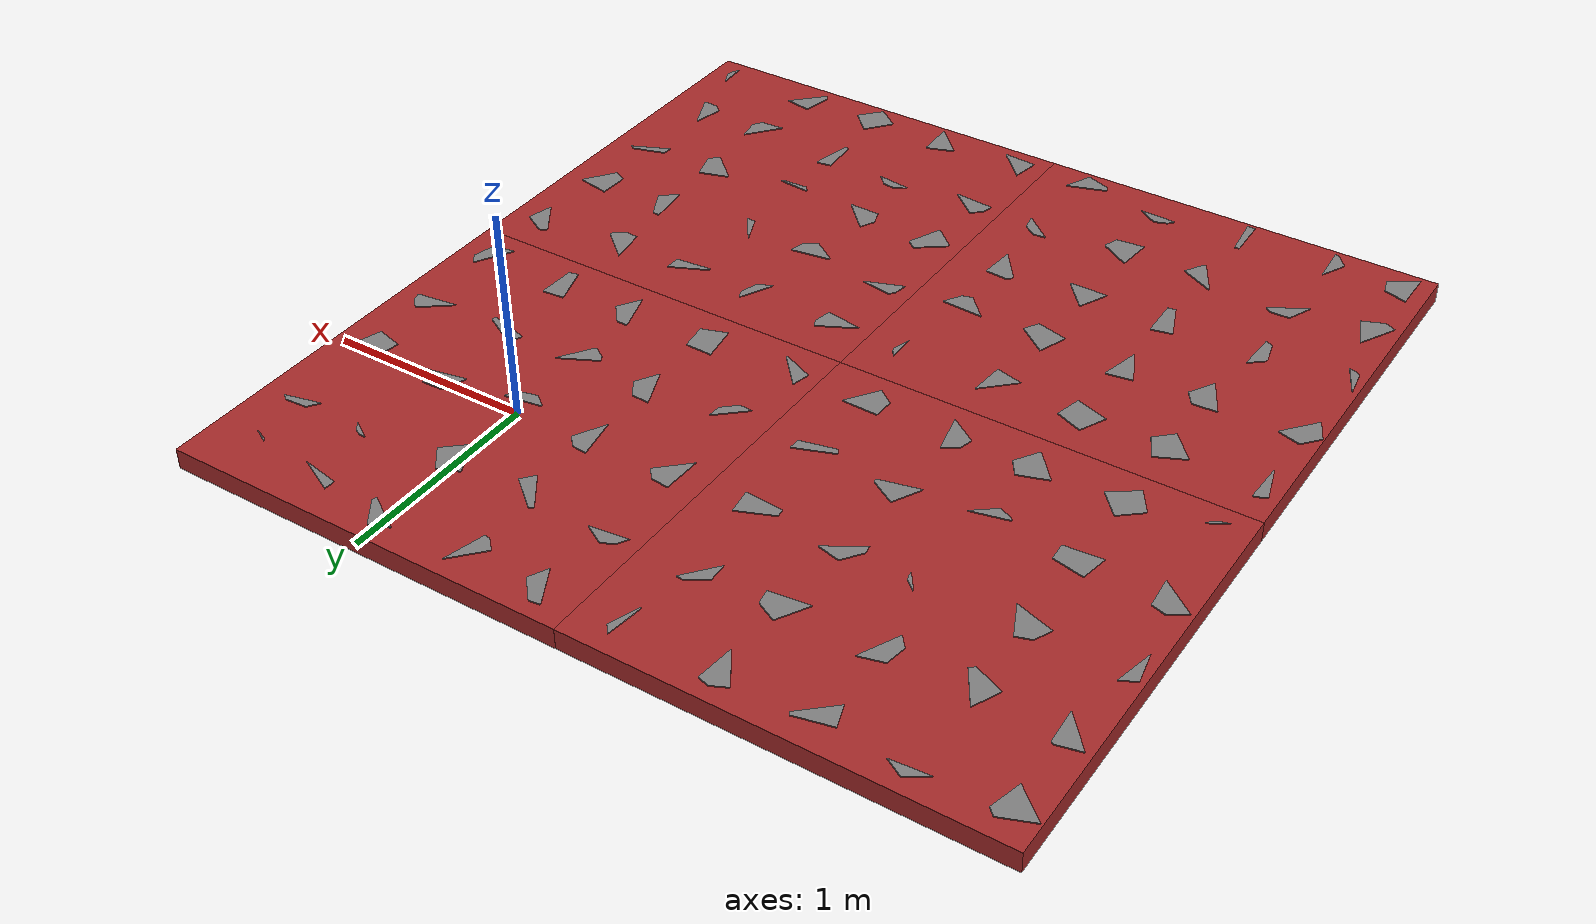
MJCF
<mujoco model="MuJoCo Model">
  <compiler angle="radian"/>

  <visual>
    <global elevation="-10" offwidth="2048" offheight="1536"/>
    <quality shadowsize="8192"/>
    <headlight diffuse="0.5 0.5 0.5" specular="1 1 1"/>
  </visual>

  <default>
    <mesh scale="0.1 0.1 0.1"/>
    <geom type="box"/>
  </default>

  <asset>
    <texture type="skybox" builtin="gradient" rgb1="0.5 0.5 0.5" rgb2="0 0 0" width="10" height="60"/>
    <texture type="2d" name="groundplane" builtin="checker" mark="edge" rgb1="1 1 1" rgb2="1 1 1" width="300" height="300"/>
    <material name="groundplane" texture="groundplane" texuniform="true" texrepeat="5 5" reflectance="0.3"/>
    <mesh name="d0_0_debris_-2_-2" vertex="-0.614793 0.788689 0 -0.0149217 0.999889 0 -0.106564 -0.994306 0 -0.122161 0.99251 0 -0.614793 0.788689 0.05 -0.0149217 0.999889 0.05 -0.106564 -0.994306 0.05 -0.122161 0.99251 0.05"/>
    <mesh name="d0_1_debris_-2_-2" vertex="-0.986749 0.162255 0 -0.297991 0.954569 0 0.763955 0.645269 0 -0.498748 -0.866747 0 -0.986749 0.162255 0.05 -0.297991 0.954569 0.05 0.763955 0.645269 0.05 -0.498748 -0.866747 0.05"/>
    <mesh name="d0_2_debris_-2_-2" vertex="-0.625657 -0.780098 0 -0.0851731 -0.996366 0 -0.396304 -0.918119 0 -0.822205 0.569191 0 -0.625657 -0.780098 0.05 -0.0851731 -0.996366 0.05 -0.396304 -0.918119 0.05 -0.822205 0.569191 0.05"/>
    <mesh name="d0_3_debris_-2_-2" vertex="-0.689954 -0.723853 0 0.822827 -0.568291 0 -0.20133 -0.979523 0 0.227664 0.97374 0 -0.689954 -0.723853 0.05 0.822827 -0.568291 0.05 -0.20133 -0.979523 0.05 0.227664 0.97374 0.05"/>
    <mesh name="d0_4_debris_-2_-2" vertex="-0.310926 0.950434 0 0.99012 -0.140219 0 -0.328539 -0.94449 0 0.780622 0.625003 0 -0.310926 0.950434 0.05 0.99012 -0.140219 0.05 -0.328539 -0.94449 0.05 0.780622 0.625003 0.05"/>
    <mesh name="d1_0_debris_-2_-2" vertex="0.406911 0.913468 0 0.165593 -0.986194 0 0.976677 -0.214713 0 -0.959713 0.280984 0 0.406911 0.913468 0.05 0.165593 -0.986194 0.05 0.976677 -0.214713 0.05 -0.959713 0.280984 0.05"/>
    <mesh name="d1_1_debris_-2_-2" vertex="0.538849 0.842402 0 0.285114 -0.958494 0 0.979251 0.202652 0 -0.624393 0.781111 0 0.538849 0.842402 0.05 0.285114 -0.958494 0.05 0.979251 0.202652 0.05 -0.624393 0.781111 0.05"/>
    <mesh name="d1_2_debris_-2_-2" vertex="-0.220918 0.975292 0 -0.314662 -0.949204 0 -0.667135 -0.744937 0 -0.930156 0.367165 0 -0.220918 0.975292 0.05 -0.314662 -0.949204 0.05 -0.667135 -0.744937 0.05 -0.930156 0.367165 0.05"/>
    <mesh name="d1_3_debris_-2_-2" vertex="-0.968788 -0.247889 0 0.72685 0.686796 0 -0.462879 0.886422 0 0.44052 0.897743 0 -0.968788 -0.247889 0.05 0.72685 0.686796 0.05 -0.462879 0.886422 0.05 0.44052 0.897743 0.05"/>
    <mesh name="d1_4_debris_-2_-2" vertex="-0.376933 0.926241 0 -0.965161 -0.261656 0 -0.250283 -0.968173 0 -0.44892 -0.893572 0 -0.376933 0.926241 0.05 -0.965161 -0.261656 0.05 -0.250283 -0.968173 0.05 -0.44892 -0.893572 0.05"/>
    <mesh name="d2_0_debris_-2_-2" vertex="0.590622 -0.806948 0 -0.951063 -0.308997 0 0.90472 0.426006 0 -0.357728 0.933826 0 0.590622 -0.806948 0.05 -0.951063 -0.308997 0.05 0.90472 0.426006 0.05 -0.357728 0.933826 0.05"/>
    <mesh name="d2_1_debris_-2_-2" vertex="0.0669399 -0.997757 0 0.47871 0.877973 0 -0.723283 0.690552 0 0.520434 0.853902 0 0.0669399 -0.997757 0.05 0.47871 0.877973 0.05 -0.723283 0.690552 0.05 0.520434 0.853902 0.05"/>
    <mesh name="d2_2_debris_-2_-2" vertex="0.00184604 -0.999998 0 0.372846 -0.927893 0 -0.6733 0.739369 0 0.321489 0.946913 0 0.00184604 -0.999998 0.05 0.372846 -0.927893 0.05 -0.6733 0.739369 0.05 0.321489 0.946913 0.05"/>
    <mesh name="d2_3_debris_-2_-2" vertex="0.356898 -0.934143 0 0.466196 -0.884682 0 0.999948 -0.010215 0 -0.600353 0.799735 0 0.356898 -0.934143 0.05 0.466196 -0.884682 0.05 0.999948 -0.010215 0.05 -0.600353 0.799735 0.05"/>
    <mesh name="d2_4_debris_-2_-2" vertex="0.104047 -0.994572 0 -0.116919 0.993142 0 -0.339089 0.940754 0 -0.281785 -0.959477 0 0.104047 -0.994572 0.05 -0.116919 0.993142 0.05 -0.339089 0.940754 0.05 -0.281785 -0.959477 0.05"/>
    <mesh name="d3_0_debris_-2_-2" vertex="0.479868 -0.877341 0 0.622437 0.78267 0 0.430595 -0.902545 0 -0.800745 -0.599005 0 0.479868 -0.877341 0.05 0.622437 0.78267 0.05 0.430595 -0.902545 0.05 -0.800745 -0.599005 0.05"/>
    <mesh name="d3_1_debris_-2_-2" vertex="-0.384695 0.923044 0 -0.901872 -0.432003 0 0.991649 -0.128965 0 0.587622 -0.809136 0 -0.384695 0.923044 0.05 -0.901872 -0.432003 0.05 0.991649 -0.128965 0.05 0.587622 -0.809136 0.05"/>
    <mesh name="d3_2_debris_-2_-2" vertex="-0.936384 -0.350978 0 -0.22308 0.9748 0 0.930379 -0.366599 0 -0.320812 0.947143 0 -0.936384 -0.350978 0.05 -0.22308 0.9748 0.05 0.930379 -0.366599 0.05 -0.320812 0.947143 0.05"/>
    <mesh name="d3_3_debris_-2_-2" vertex="-0.595416 -0.803418 0 -0.42726 0.904129 0 0.999191 0.0402178 0 0.741334 -0.671136 0 -0.595416 -0.803418 0.05 -0.42726 0.904129 0.05 0.999191 0.0402178 0.05 0.741334 -0.671136 0.05"/>
    <mesh name="d3_4_debris_-2_-2" vertex="-0.629773 0.776779 0 -0.0099671 0.99995 0 0.902339 0.431027 0 -0.862863 0.505438 0 -0.629773 0.776779 0.05 -0.0099671 0.99995 0.05 0.902339 0.431027 0.05 -0.862863 0.505438 0.05"/>
    <mesh name="d4_0_debris_-2_-2" vertex="0.942512 0.334173 0 0.72394 -0.689863 0 0.98829 0.152584 0 0.707035 0.707178 0 0.942512 0.334173 0.05 0.72394 -0.689863 0.05 0.98829 0.152584 0.05 0.707035 0.707178 0.05"/>
    <mesh name="d4_1_debris_-2_-2" vertex="0.998722 -0.0505327 0 0.0345225 -0.999404 0 0.494001 -0.869462 0 -0.998028 0.0627773 0 0.998722 -0.0505327 0.05 0.0345225 -0.999404 0.05 0.494001 -0.869462 0.05 -0.998028 0.0627773 0.05"/>
    <mesh name="d4_2_debris_-2_-2" vertex="0.419492 -0.907759 0 0.569734 0.821829 0 -0.753683 0.657238 0 -0.462144 0.886805 0 0.419492 -0.907759 0.05 0.569734 0.821829 0.05 -0.753683 0.657238 0.05 -0.462144 0.886805 0.05"/>
    <mesh name="d4_3_debris_-2_-2" vertex="-0.367084 0.930188 0 0.209124 0.977889 0 0.814089 0.580741 0 0.97836 -0.206908 0 -0.367084 0.930188 0.05 0.209124 0.977889 0.05 0.814089 0.580741 0.05 0.97836 -0.206908 0.05"/>
    <mesh name="d4_4_debris_-2_-2" vertex="-0.955938 -0.293569 0 0.333308 -0.942818 0 -0.857109 -0.515135 0 0.94001 0.341148 0 -0.955938 -0.293569 0.05 0.333308 -0.942818 0.05 -0.857109 -0.515135 0.05 0.94001 0.341148 0.05"/>
    <mesh name="d0_0_debris_-2_0" vertex="0.825678 0.564141 0 0.433442 -0.901182 0 -0.957368 0.288872 0 0.510276 0.860011 0 0.825678 0.564141 0.05 0.433442 -0.901182 0.05 -0.957368 0.288872 0.05 0.510276 0.860011 0.05"/>
    <mesh name="d0_1_debris_-2_0" vertex="0.57099 -0.820957 0 0.488268 0.872694 0 -0.731428 0.681919 0 0.36358 0.931563 0 0.57099 -0.820957 0.05 0.488268 0.872694 0.05 -0.731428 0.681919 0.05 0.36358 0.931563 0.05"/>
    <mesh name="d0_2_debris_-2_0" vertex="-0.107967 0.994155 0 -0.802894 0.596122 0 -0.768464 0.639894 0 -0.538151 -0.842849 0 -0.107967 0.994155 0.05 -0.802894 0.596122 0.05 -0.768464 0.639894 0.05 -0.538151 -0.842849 0.05"/>
    <mesh name="d0_3_debris_-2_0" vertex="0.703643 -0.710554 0 0.590939 0.806716 0 -0.0870416 0.996205 0 -0.865622 0.500698 0 0.703643 -0.710554 0.05 0.590939 0.806716 0.05 -0.0870416 0.996205 0.05 -0.865622 0.500698 0.05"/>
    <mesh name="d0_4_debris_-2_0" vertex="-0.000849732 -1 0 0.865276 -0.501296 0 0.517876 -0.855456 0 0.674426 -0.738342 0 -0.000849732 -1 0.05 0.865276 -0.501296 0.05 0.517876 -0.855456 0.05 0.674426 -0.738342 0.05"/>
    <mesh name="d1_0_debris_-2_0" vertex="-0.911127 0.412125 0 -0.0453477 0.998971 0 0.0327318 0.999464 0 0.837054 0.54712 0 -0.911127 0.412125 0.05 -0.0453477 0.998971 0.05 0.0327318 0.999464 0.05 0.837054 0.54712 0.05"/>
    <mesh name="d1_1_debris_-2_0" vertex="-0.9455 -0.325621 0 0.683465 -0.729983 0 0.431085 -0.902311 0 -0.367232 0.930129 0 -0.9455 -0.325621 0.05 0.683465 -0.729983 0.05 0.431085 -0.902311 0.05 -0.367232 0.930129 0.05"/>
    <mesh name="d1_2_debris_-2_0" vertex="-0.631815 0.775119 0 -0.999778 -0.021052 0 0.809461 -0.587173 0 0.0801581 0.996782 0 -0.631815 0.775119 0.05 -0.999778 -0.021052 0.05 0.809461 -0.587173 0.05 0.0801581 0.996782 0.05"/>
    <mesh name="d1_3_debris_-2_0" vertex="0.926003 -0.377516 0 0.878058 0.478554 0 -0.609538 0.792757 0 -0.85445 -0.519534 0 0.926003 -0.377516 0.05 0.878058 0.478554 0.05 -0.609538 0.792757 0.05 -0.85445 -0.519534 0.05"/>
    <mesh name="d1_4_debris_-2_0" vertex="-0.989631 0.143635 0 0.99659 -0.0825135 0 -0.258997 -0.965878 0 0.0216698 0.999765 0 -0.989631 0.143635 0.05 0.99659 -0.0825135 0.05 -0.258997 -0.965878 0.05 0.0216698 0.999765 0.05"/>
    <mesh name="d2_0_debris_-2_0" vertex="-0.600755 -0.799434 0 0.759753 0.650211 0 -0.966238 0.257652 0 0.84845 0.529275 0 -0.600755 -0.799434 0.05 0.759753 0.650211 0.05 -0.966238 0.257652 0.05 0.84845 0.529275 0.05"/>
    <mesh name="d2_1_debris_-2_0" vertex="-0.768761 0.639537 0 0.370883 0.928679 0 -0.492533 -0.870294 0 -0.932953 -0.359997 0 -0.768761 0.639537 0.05 0.370883 0.928679 0.05 -0.492533 -0.870294 0.05 -0.932953 -0.359997 0.05"/>
    <mesh name="d2_2_debris_-2_0" vertex="0.32365 0.946177 0 0.999979 0.00654966 0 0.885634 0.464383 0 0.930507 0.366275 0 0.32365 0.946177 0.05 0.999979 0.00654966 0.05 0.885634 0.464383 0.05 0.930507 0.366275 0.05"/>
    <mesh name="d2_3_debris_-2_0" vertex="0.979563 -0.201139 0 -0.665093 -0.746761 0 -0.79871 -0.601717 0 -0.0405943 -0.999176 0 0.979563 -0.201139 0.05 -0.665093 -0.746761 0.05 -0.79871 -0.601717 0.05 -0.0405943 -0.999176 0.05"/>
    <mesh name="d2_4_debris_-2_0" vertex="0.488668 0.87247 0 0.988986 0.148008 0 0.275168 -0.961396 0 -0.911212 0.411937 0 0.488668 0.87247 0.05 0.988986 0.148008 0.05 0.275168 -0.961396 0.05 -0.911212 0.411937 0.05"/>
    <mesh name="d3_0_debris_-2_0" vertex="-0.75645 0.654051 0 0.326466 -0.945209 0 -0.0416704 0.999131 0 0.50484 0.863213 0 -0.75645 0.654051 0.05 0.326466 -0.945209 0.05 -0.0416704 0.999131 0.05 0.50484 0.863213 0.05"/>
    <mesh name="d3_1_debris_-2_0" vertex="-0.90506 -0.425284 0 0.978808 -0.204782 0 0.859367 0.511359 0 -0.0952159 0.995457 0 -0.90506 -0.425284 0.05 0.978808 -0.204782 0.05 0.859367 0.511359 0.05 -0.0952159 0.995457 0.05"/>
    <mesh name="d3_2_debris_-2_0" vertex="-0.99969 0.0248799 0 -0.925021 -0.379917 0 0.738141 0.674646 0 -0.346519 0.938043 0 -0.99969 0.0248799 0.05 -0.925021 -0.379917 0.05 0.738141 0.674646 0.05 -0.346519 0.938043 0.05"/>
    <mesh name="d3_3_debris_-2_0" vertex="-0.241987 0.97028 0 -0.9318 -0.362973 0 0.964294 0.264834 0 0.996842 0.07941 0 -0.241987 0.97028 0.05 -0.9318 -0.362973 0.05 0.964294 0.264834 0.05 0.996842 0.07941 0.05"/>
    <mesh name="d3_4_debris_-2_0" vertex="-0.839628 0.543162 0 -0.149974 0.98869 0 -0.997292 -0.0735498 0 0.289133 -0.957289 0 -0.839628 0.543162 0.05 -0.149974 0.98869 0.05 -0.997292 -0.0735498 0.05 0.289133 -0.957289 0.05"/>
    <mesh name="d4_0_debris_-2_0" vertex="0.340881 -0.940107 0 0.401754 -0.915748 0 0.89307 0.449917 0 0.565652 0.824644 0 0.340881 -0.940107 0.05 0.401754 -0.915748 0.05 0.89307 0.449917 0.05 0.565652 0.824644 0.05"/>
    <mesh name="d4_1_debris_-2_0" vertex="-0.0526115 0.998615 0 -0.923667 0.383197 0 0.306626 0.95183 0 -0.877081 -0.480343 0 -0.0526115 0.998615 0.05 -0.923667 0.383197 0.05 0.306626 0.95183 0.05 -0.877081 -0.480343 0.05"/>
    <mesh name="d4_2_debris_-2_0" vertex="-0.936023 -0.351939 0 0.875874 -0.48254 0 0.696618 0.717442 0 -0.999601 0.0282567 0 -0.936023 -0.351939 0.05 0.875874 -0.48254 0.05 0.696618 0.717442 0.05 -0.999601 0.0282567 0.05"/>
    <mesh name="d4_3_debris_-2_0" vertex="0.948881 -0.315633 0 -0.89117 -0.45367 0 0.972995 0.230828 0 -0.721418 -0.6925 0 0.948881 -0.315633 0.05 -0.89117 -0.45367 0.05 0.972995 0.230828 0.05 -0.721418 -0.6925 0.05"/>
    <mesh name="d4_4_debris_-2_0" vertex="-0.131102 -0.991369 0 -0.853395 0.521265 0 -0.894085 -0.447898 0 0.884365 0.466797 0 -0.131102 -0.991369 0.05 -0.853395 0.521265 0.05 -0.894085 -0.447898 0.05 0.884365 0.466797 0.05"/>
    <mesh name="d0_0_debris_0_-2" vertex="0.963298 0.268433 0 0.795475 -0.605987 0 0.806848 0.590759 0 -0.954069 -0.299587 0 0.963298 0.268433 0.05 0.795475 -0.605987 0.05 0.806848 0.590759 0.05 -0.954069 -0.299587 0.05"/>
    <mesh name="d0_1_debris_0_-2" vertex="-0.989791 -0.142529 0 -0.65459 0.755984 0 0.848773 0.528758 0 -0.870596 0.491999 0 -0.989791 -0.142529 0.05 -0.65459 0.755984 0.05 0.848773 0.528758 0.05 -0.870596 0.491999 0.05"/>
    <mesh name="d0_2_debris_0_-2" vertex="0.780537 0.62511 0 0.338984 0.940792 0 -0.998169 -0.0604795 0 0.06138 -0.998114 0 0.780537 0.62511 0.05 0.338984 0.940792 0.05 -0.998169 -0.0604795 0.05 0.06138 -0.998114 0.05"/>
    <mesh name="d0_3_debris_0_-2" vertex="0.98387 -0.178884 0 -0.830223 0.557432 0 -0.999992 0.00389527 0 -0.335743 0.941953 0 0.98387 -0.178884 0.05 -0.830223 0.557432 0.05 -0.999992 0.00389527 0.05 -0.335743 0.941953 0.05"/>
    <mesh name="d0_4_debris_0_-2" vertex="0.757662 -0.652647 0 -0.607302 0.794471 0 0.778932 -0.627108 0 -0.848578 -0.52907 0 0.757662 -0.652647 0.05 -0.607302 0.794471 0.05 0.778932 -0.627108 0.05 -0.848578 -0.52907 0.05"/>
    <mesh name="d1_0_debris_0_-2" vertex="0.989617 0.143732 0 0.703651 -0.710546 0 0.825715 0.564087 0 0.0155992 -0.999878 0 0.989617 0.143732 0.05 0.703651 -0.710546 0.05 0.825715 0.564087 0.05 0.0155992 -0.999878 0.05"/>
    <mesh name="d1_1_debris_0_-2" vertex="0.191219 -0.981547 0 -0.983507 -0.180872 0 0.992352 0.123442 0 0.815301 -0.579037 0 0.191219 -0.981547 0.05 -0.983507 -0.180872 0.05 0.992352 0.123442 0.05 0.815301 -0.579037 0.05"/>
    <mesh name="d1_2_debris_0_-2" vertex="0.757831 -0.652451 0 -0.998219 0.0596626 0 -0.786674 -0.617368 0 -0.645085 0.76411 0 0.757831 -0.652451 0.05 -0.998219 0.0596626 0.05 -0.786674 -0.617368 0.05 -0.645085 0.76411 0.05"/>
    <mesh name="d1_3_debris_0_-2" vertex="0.418509 0.908213 0 -0.183862 0.982952 0 0.909917 0.41479 0 -0.757932 0.652333 0 0.418509 0.908213 0.05 -0.183862 0.982952 0.05 0.909917 0.41479 0.05 -0.757932 0.652333 0.05"/>
    <mesh name="d1_4_debris_0_-2" vertex="-0.893786 0.448494 0 0.43763 -0.899155 0 0.434538 0.900654 0 0.489825 -0.871821 0 -0.893786 0.448494 0.05 0.43763 -0.899155 0.05 0.434538 0.900654 0.05 0.489825 -0.871821 0.05"/>
    <mesh name="d2_0_debris_0_-2" vertex="0.954164 0.299284 0 -0.857642 -0.514247 0 0.90625 -0.422741 0 -0.812871 -0.582444 0 0.954164 0.299284 0.05 -0.857642 -0.514247 0.05 0.90625 -0.422741 0.05 -0.812871 -0.582444 0.05"/>
    <mesh name="d2_1_debris_0_-2" vertex="0.122448 -0.992475 0 0.186412 -0.982472 0 -0.245006 -0.969522 0 -0.86641 0.499334 0 0.122448 -0.992475 0.05 0.186412 -0.982472 0.05 -0.245006 -0.969522 0.05 -0.86641 0.499334 0.05"/>
    <mesh name="d2_2_debris_0_-2" vertex="0.745101 -0.666952 0 -0.587373 -0.809316 0 -0.843606 -0.536962 0 0.672869 -0.739762 0 0.745101 -0.666952 0.05 -0.587373 -0.809316 0.05 -0.843606 -0.536962 0.05 0.672869 -0.739762 0.05"/>
    <mesh name="d2_3_debris_0_-2" vertex="-0.402569 -0.91539 0 -0.50823 0.861221 0 0.236807 0.971557 0 -0.189084 -0.981961 0 -0.402569 -0.91539 0.05 -0.50823 0.861221 0.05 0.236807 0.971557 0.05 -0.189084 -0.981961 0.05"/>
    <mesh name="d2_4_debris_0_-2" vertex="-0.979684 -0.200549 0 0.999812 0.0194142 0 0.0789454 -0.996879 0 -0.00350131 0.999994 0 -0.979684 -0.200549 0.05 0.999812 0.0194142 0.05 0.0789454 -0.996879 0.05 -0.00350131 0.999994 0.05"/>
    <mesh name="d3_0_debris_0_-2" vertex="-0.392587 -0.919715 0 0.215744 -0.97645 0 -0.635228 0.772325 0 0.863584 -0.504205 0 -0.392587 -0.919715 0.05 0.215744 -0.97645 0.05 -0.635228 0.772325 0.05 0.863584 -0.504205 0.05"/>
    <mesh name="d3_1_debris_0_-2" vertex="0.122755 -0.992437 0 0.239577 0.970877 0 0.925524 -0.378688 0 -0.121251 0.992622 0 0.122755 -0.992437 0.05 0.239577 0.970877 0.05 0.925524 -0.378688 0.05 -0.121251 0.992622 0.05"/>
    <mesh name="d3_2_debris_0_-2" vertex="-0.91674 0.399483 0 0.525513 0.850786 0 0.487515 -0.873114 0 0.901896 -0.431953 0 -0.91674 0.399483 0.05 0.525513 0.850786 0.05 0.487515 -0.873114 0.05 0.901896 -0.431953 0.05"/>
    <mesh name="d3_3_debris_0_-2" vertex="0.745292 0.666738 0 -0.509866 -0.860254 0 0.933296 -0.359109 0 0.628706 -0.777644 0 0.745292 0.666738 0.05 -0.509866 -0.860254 0.05 0.933296 -0.359109 0.05 0.628706 -0.777644 0.05"/>
    <mesh name="d3_4_debris_0_-2" vertex="0.766424 0.642335 0 -0.819146 -0.573586 0 -0.51009 0.860121 0 -0.64204 -0.766671 0 0.766424 0.642335 0.05 -0.819146 -0.573586 0.05 -0.51009 0.860121 0.05 -0.64204 -0.766671 0.05"/>
    <mesh name="d4_0_debris_0_-2" vertex="-0.135148 0.990825 0 0.918145 0.396245 0 -0.53147 0.847077 0 0.585832 -0.810432 0 -0.135148 0.990825 0.05 0.918145 0.396245 0.05 -0.53147 0.847077 0.05 0.585832 -0.810432 0.05"/>
    <mesh name="d4_1_debris_0_-2" vertex="-0.734691 -0.678402 0 -0.686914 0.726739 0 0.903262 0.429088 0 -0.150036 -0.988681 0 -0.734691 -0.678402 0.05 -0.686914 0.726739 0.05 0.903262 0.429088 0.05 -0.150036 -0.988681 0.05"/>
    <mesh name="d4_2_debris_0_-2" vertex="-0.980402 -0.197007 0 0.670224 0.742159 0 -0.96837 0.249518 0 0.801806 0.597585 0 -0.980402 -0.197007 0.05 0.670224 0.742159 0.05 -0.96837 0.249518 0.05 0.801806 0.597585 0.05"/>
    <mesh name="d4_3_debris_0_-2" vertex="-0.488341 0.872653 0 0.304408 -0.952542 0 -0.823132 -0.56785 0 -0.43718 -0.899374 0 -0.488341 0.872653 0.05 0.304408 -0.952542 0.05 -0.823132 -0.56785 0.05 -0.43718 -0.899374 0.05"/>
    <mesh name="d4_4_debris_0_-2" vertex="0.998279 0.0586476 0 0.975867 -0.218365 0 0.741628 -0.670812 0 0.664606 0.747194 0 0.998279 0.0586476 0.05 0.975867 -0.218365 0.05 0.741628 -0.670812 0.05 0.664606 0.747194 0.05"/>
    <mesh name="d0_0_debris_0_0" vertex="0.99851 0.0545622 0 -0.395796 0.918338 0 0.149617 0.988744 0 0.556778 -0.830661 0 0.99851 0.0545622 0.05 -0.395796 0.918338 0.05 0.149617 0.988744 0.05 0.556778 -0.830661 0.05"/>
    <mesh name="d0_1_debris_0_0" vertex="-0.641 0.767541 0 -0.971249 0.238066 0 -0.0789145 0.996881 0 0.888054 0.459739 0 -0.641 0.767541 0.05 -0.971249 0.238066 0.05 -0.0789145 0.996881 0.05 0.888054 0.459739 0.05"/>
    <mesh name="d0_2_debris_0_0" vertex="0.932179 0.361997 0 0.541133 0.840937 0 -0.336459 0.941698 0 -0.400644 -0.916234 0 0.932179 0.361997 0.05 0.541133 0.840937 0.05 -0.336459 0.941698 0.05 -0.400644 -0.916234 0.05"/>
    <mesh name="d0_3_debris_0_0" vertex="0.275664 -0.961254 0 -0.355416 -0.934708 0 0.967393 0.253281 0 0.922133 -0.386874 0 0.275664 -0.961254 0.05 -0.355416 -0.934708 0.05 0.967393 0.253281 0.05 0.922133 -0.386874 0.05"/>
    <mesh name="d0_4_debris_0_0" vertex="-0.973027 -0.23069 0 0.562048 -0.827104 0 -0.769176 0.639037 0 0.487578 -0.873079 0 -0.973027 -0.23069 0.05 0.562048 -0.827104 0.05 -0.769176 0.639037 0.05 0.487578 -0.873079 0.05"/>
    <mesh name="d1_0_debris_0_0" vertex="-0.430062 -0.902799 0 -0.905097 -0.425205 0 -0.145722 -0.989326 0 0.341012 0.940059 0 -0.430062 -0.902799 0.05 -0.905097 -0.425205 0.05 -0.145722 -0.989326 0.05 0.341012 0.940059 0.05"/>
    <mesh name="d1_1_debris_0_0" vertex="-0.495542 0.868584 0 0.957213 -0.289385 0 0.466175 -0.884692 0 -0.681404 0.731907 0 -0.495542 0.868584 0.05 0.957213 -0.289385 0.05 0.466175 -0.884692 0.05 -0.681404 0.731907 0.05"/>
    <mesh name="d1_2_debris_0_0" vertex="-0.268267 0.963345 0 0.432433 0.901666 0 0.89476 0.446547 0 0.09511 -0.995467 0 -0.268267 0.963345 0.05 0.432433 0.901666 0.05 0.89476 0.446547 0.05 0.09511 -0.995467 0.05"/>
    <mesh name="d1_3_debris_0_0" vertex="-0.388929 0.921268 0 0.361892 -0.93222 0 0.993091 0.117349 0 0.471757 0.881729 0 -0.388929 0.921268 0.05 0.361892 -0.93222 0.05 0.993091 0.117349 0.05 0.471757 0.881729 0.05"/>
    <mesh name="d1_4_debris_0_0" vertex="-0.365224 -0.93092 0 0.671492 0.741012 0 0.845573 -0.533859 0 -0.631225 0.7756 0 -0.365224 -0.93092 0.05 0.671492 0.741012 0.05 0.845573 -0.533859 0.05 -0.631225 0.7756 0.05"/>
    <mesh name="d2_0_debris_0_0" vertex="0.128361 0.991727 0 0.978844 -0.20461 0 -0.780016 0.62576 0 0.909802 -0.415043 0 0.128361 0.991727 0.05 0.978844 -0.20461 0.05 -0.780016 0.62576 0.05 0.909802 -0.415043 0.05"/>
    <mesh name="d2_1_debris_0_0" vertex="-0.0559668 -0.998433 0 0.175203 0.984532 0 -0.822664 0.568528 0 0.997921 -0.0644436 0 -0.0559668 -0.998433 0.05 0.175203 0.984532 0.05 -0.822664 0.568528 0.05 0.997921 -0.0644436 0.05"/>
    <mesh name="d2_2_debris_0_0" vertex="0.975243 -0.221137 0 -0.23298 -0.972481 0 0.651397 -0.758737 0 -0.863305 -0.504682 0 0.975243 -0.221137 0.05 -0.23298 -0.972481 0.05 0.651397 -0.758737 0.05 -0.863305 -0.504682 0.05"/>
    <mesh name="d2_3_debris_0_0" vertex="-0.940102 -0.340893 0 -0.804841 -0.59349 0 0.840908 0.541179 0 -0.21215 -0.977237 0 -0.940102 -0.340893 0.05 -0.804841 -0.59349 0.05 0.840908 0.541179 0.05 -0.21215 -0.977237 0.05"/>
    <mesh name="d2_4_debris_0_0" vertex="0.26786 0.963458 0 0.994792 0.10193 0 0.30688 -0.951748 0 -0.283118 0.959085 0 0.26786 0.963458 0.05 0.994792 0.10193 0.05 0.30688 -0.951748 0.05 -0.283118 0.959085 0.05"/>
    <mesh name="d3_0_debris_0_0" vertex="-0.999406 -0.0344702 0 -0.96176 0.273892 0 -0.969603 -0.244685 0 0.816334 -0.577581 0 -0.999406 -0.0344702 0.05 -0.96176 0.273892 0.05 -0.969603 -0.244685 0.05 0.816334 -0.577581 0.05"/>
    <mesh name="d3_1_debris_0_0" vertex="-0.0981758 0.995169 0 0.922622 0.385706 0 0.507841 0.861451 0 0.243502 0.9699 0 -0.0981758 0.995169 0.05 0.922622 0.385706 0.05 0.507841 0.861451 0.05 0.243502 0.9699 0.05"/>
    <mesh name="d3_2_debris_0_0" vertex="0.994021 0.109193 0 -0.965005 -0.262232 0 -0.542057 0.840342 0 0.467681 0.883897 0 0.994021 0.109193 0.05 -0.965005 -0.262232 0.05 -0.542057 0.840342 0.05 0.467681 0.883897 0.05"/>
    <mesh name="d3_3_debris_0_0" vertex="0.977383 -0.211479 0 -0.699504 0.714628 0 0.906874 -0.421402 0 -0.995104 0.098829 0 0.977383 -0.211479 0.05 -0.699504 0.714628 0.05 0.906874 -0.421402 0.05 -0.995104 0.098829 0.05"/>
    <mesh name="d3_4_debris_0_0" vertex="-0.0498246 -0.998758 0 -0.608128 0.793839 0 0.399435 -0.916762 0 0.477989 0.878366 0 -0.0498246 -0.998758 0.05 -0.608128 0.793839 0.05 0.399435 -0.916762 0.05 0.477989 0.878366 0.05"/>
    <mesh name="d4_0_debris_0_0" vertex="-0.792806 -0.609474 0 -0.0384015 -0.999262 0 -0.0287689 -0.999586 0 -0.656033 -0.754732 0 -0.792806 -0.609474 0.05 -0.0384015 -0.999262 0.05 -0.0287689 -0.999586 0.05 -0.656033 -0.754732 0.05"/>
    <mesh name="d4_1_debris_0_0" vertex="0.741113 0.67138 0 -0.95977 0.280788 0 -0.604903 0.796299 0 0.499171 0.866504 0 0.741113 0.67138 0.05 -0.95977 0.280788 0.05 -0.604903 0.796299 0.05 0.499171 0.866504 0.05"/>
    <mesh name="d4_2_debris_0_0" vertex="-0.611077 0.791571 0 0.886895 0.461971 0 0.423112 -0.906077 0 -0.822053 -0.56941 0 -0.611077 0.791571 0.05 0.886895 0.461971 0.05 0.423112 -0.906077 0.05 -0.822053 -0.56941 0.05"/>
    <mesh name="d4_3_debris_0_0" vertex="-0.979871 -0.199633 0 0.453413 0.8913 0 0.850005 0.526774 0 0.998359 0.0572617 0 -0.979871 -0.199633 0.05 0.453413 0.8913 0.05 0.850005 0.526774 0.05 0.998359 0.0572617 0.05"/>
    <mesh name="d4_4_debris_0_0" vertex="0.676226 -0.736695 0 0.629824 0.776738 0 0.950444 0.310896 0 -0.372898 -0.927872 0 0.676226 -0.736695 0.05 0.629824 0.776738 0.05 0.950444 0.310896 0.05 -0.372898 -0.927872 0.05"/>
  </asset>

  <worldbody>
    <light pos="-1 -1 40" dir="0.0663723 0.0663723 -0.995585"/>
    <light pos="-1 1 40" dir="0.0663723 -0.0663723 -0.995585"/>
    <light pos="1 -1 40" dir="-0.0663723 0.0663723 -0.995585"/>
    <light pos="1 1 40" dir="-0.0663723 -0.0663723 -0.995585"/>
    <body name="debris_-2_-2" pos="-2 -2 0">
      <geom size="1 1 0.05" rgba="0.647 0.165 0.165 1"/>
    </body>
    <body name="d0_0_debris_-2_-2" pos="-2.95 -1.05 0.2">
      <joint type="free" limited="false" actuatorfrclimited="false"/>
      <geom type="mesh" solref="0.9" solimp="0.9 0.95 0.001 0 0" mesh="d0_0_debris_-2_-2"/>
    </body>
    <body name="d0_1_debris_-2_-2" pos="-2.95 -1.45 0.2">
      <joint type="free" limited="false" actuatorfrclimited="false"/>
      <geom type="mesh" solref="0.9" solimp="0.9 0.95 0.001 0 0" mesh="d0_1_debris_-2_-2"/>
    </body>
    <body name="d0_2_debris_-2_-2" pos="-2.95 -1.85 0.2">
      <joint type="free" limited="false" actuatorfrclimited="false"/>
      <geom type="mesh" solref="0.9" solimp="0.9 0.95 0.001 0 0" mesh="d0_2_debris_-2_-2"/>
    </body>
    <body name="d0_3_debris_-2_-2" pos="-2.95 -2.25 0.2">
      <joint type="free" limited="false" actuatorfrclimited="false"/>
      <geom type="mesh" solref="0.9" solimp="0.9 0.95 0.001 0 0" mesh="d0_3_debris_-2_-2"/>
    </body>
    <body name="d0_4_debris_-2_-2" pos="-2.95 -2.65 0.2">
      <joint type="free" limited="false" actuatorfrclimited="false"/>
      <geom type="mesh" solref="0.9" solimp="0.9 0.95 0.001 0 0" mesh="d0_4_debris_-2_-2"/>
    </body>
    <body name="d1_0_debris_-2_-2" pos="-2.55 -1.05 0.2">
      <joint type="free" limited="false" actuatorfrclimited="false"/>
      <geom type="mesh" solref="0.9" solimp="0.9 0.95 0.001 0 0" mesh="d1_0_debris_-2_-2"/>
    </body>
    <body name="d1_1_debris_-2_-2" pos="-2.55 -1.45 0.2">
      <joint type="free" limited="false" actuatorfrclimited="false"/>
      <geom type="mesh" solref="0.9" solimp="0.9 0.95 0.001 0 0" mesh="d1_1_debris_-2_-2"/>
    </body>
    <body name="d1_2_debris_-2_-2" pos="-2.55 -1.85 0.2">
      <joint type="free" limited="false" actuatorfrclimited="false"/>
      <geom type="mesh" solref="0.9" solimp="0.9 0.95 0.001 0 0" mesh="d1_2_debris_-2_-2"/>
    </body>
    <body name="d1_3_debris_-2_-2" pos="-2.55 -2.25 0.2">
      <joint type="free" limited="false" actuatorfrclimited="false"/>
      <geom type="mesh" solref="0.9" solimp="0.9 0.95 0.001 0 0" mesh="d1_3_debris_-2_-2"/>
    </body>
    <body name="d1_4_debris_-2_-2" pos="-2.55 -2.65 0.2">
      <joint type="free" limited="false" actuatorfrclimited="false"/>
      <geom type="mesh" solref="0.9" solimp="0.9 0.95 0.001 0 0" mesh="d1_4_debris_-2_-2"/>
    </body>
    <body name="d2_0_debris_-2_-2" pos="-2.15 -1.05 0.2">
      <joint type="free" limited="false" actuatorfrclimited="false"/>
      <geom type="mesh" solref="0.9" solimp="0.9 0.95 0.001 0 0" mesh="d2_0_debris_-2_-2"/>
    </body>
    <body name="d2_1_debris_-2_-2" pos="-2.15 -1.45 0.2">
      <joint type="free" limited="false" actuatorfrclimited="false"/>
      <geom type="mesh" solref="0.9" solimp="0.9 0.95 0.001 0 0" mesh="d2_1_debris_-2_-2"/>
    </body>
    <body name="d2_2_debris_-2_-2" pos="-2.15 -1.85 0.2">
      <joint type="free" limited="false" actuatorfrclimited="false"/>
      <geom type="mesh" solref="0.9" solimp="0.9 0.95 0.001 0 0" mesh="d2_2_debris_-2_-2"/>
    </body>
    <body name="d2_3_debris_-2_-2" pos="-2.15 -2.25 0.2">
      <joint type="free" limited="false" actuatorfrclimited="false"/>
      <geom type="mesh" solref="0.9" solimp="0.9 0.95 0.001 0 0" mesh="d2_3_debris_-2_-2"/>
    </body>
    <body name="d2_4_debris_-2_-2" pos="-2.15 -2.65 0.2">
      <joint type="free" limited="false" actuatorfrclimited="false"/>
      <geom type="mesh" solref="0.9" solimp="0.9 0.95 0.001 0 0" mesh="d2_4_debris_-2_-2"/>
    </body>
    <body name="d3_0_debris_-2_-2" pos="-1.75 -1.05 0.2">
      <joint type="free" limited="false" actuatorfrclimited="false"/>
      <geom type="mesh" solref="0.9" solimp="0.9 0.95 0.001 0 0" mesh="d3_0_debris_-2_-2"/>
    </body>
    <body name="d3_1_debris_-2_-2" pos="-1.75 -1.45 0.2">
      <joint type="free" limited="false" actuatorfrclimited="false"/>
      <geom type="mesh" solref="0.9" solimp="0.9 0.95 0.001 0 0" mesh="d3_1_debris_-2_-2"/>
    </body>
    <body name="d3_2_debris_-2_-2" pos="-1.75 -1.85 0.2">
      <joint type="free" limited="false" actuatorfrclimited="false"/>
      <geom type="mesh" solref="0.9" solimp="0.9 0.95 0.001 0 0" mesh="d3_2_debris_-2_-2"/>
    </body>
    <body name="d3_3_debris_-2_-2" pos="-1.75 -2.25 0.2">
      <joint type="free" limited="false" actuatorfrclimited="false"/>
      <geom type="mesh" solref="0.9" solimp="0.9 0.95 0.001 0 0" mesh="d3_3_debris_-2_-2"/>
    </body>
    <body name="d3_4_debris_-2_-2" pos="-1.75 -2.65 0.2">
      <joint type="free" limited="false" actuatorfrclimited="false"/>
      <geom type="mesh" solref="0.9" solimp="0.9 0.95 0.001 0 0" mesh="d3_4_debris_-2_-2"/>
    </body>
    <body name="d4_0_debris_-2_-2" pos="-1.35 -1.05 0.2">
      <joint type="free" limited="false" actuatorfrclimited="false"/>
      <geom type="mesh" solref="0.9" solimp="0.9 0.95 0.001 0 0" mesh="d4_0_debris_-2_-2"/>
    </body>
    <body name="d4_1_debris_-2_-2" pos="-1.35 -1.45 0.2">
      <joint type="free" limited="false" actuatorfrclimited="false"/>
      <geom type="mesh" solref="0.9" solimp="0.9 0.95 0.001 0 0" mesh="d4_1_debris_-2_-2"/>
    </body>
    <body name="d4_2_debris_-2_-2" pos="-1.35 -1.85 0.2">
      <joint type="free" limited="false" actuatorfrclimited="false"/>
      <geom type="mesh" solref="0.9" solimp="0.9 0.95 0.001 0 0" mesh="d4_2_debris_-2_-2"/>
    </body>
    <body name="d4_3_debris_-2_-2" pos="-1.35 -2.25 0.2">
      <joint type="free" limited="false" actuatorfrclimited="false"/>
      <geom type="mesh" solref="0.9" solimp="0.9 0.95 0.001 0 0" mesh="d4_3_debris_-2_-2"/>
    </body>
    <body name="d4_4_debris_-2_-2" pos="-1.35 -2.65 0.2">
      <joint type="free" limited="false" actuatorfrclimited="false"/>
      <geom type="mesh" solref="0.9" solimp="0.9 0.95 0.001 0 0" mesh="d4_4_debris_-2_-2"/>
    </body>
    <body name="debris_-2_0" pos="-2 0 0">
      <geom size="1 1 0.05" rgba="0.647 0.165 0.165 1"/>
    </body>
    <body name="d0_0_debris_-2_0" pos="-2.95 0.95 0.2">
      <joint type="free" limited="false" actuatorfrclimited="false"/>
      <geom type="mesh" solref="0.9" solimp="0.9 0.95 0.001 0 0" mesh="d0_0_debris_-2_0"/>
    </body>
    <body name="d0_1_debris_-2_0" pos="-2.95 0.55 0.2">
      <joint type="free" limited="false" actuatorfrclimited="false"/>
      <geom type="mesh" solref="0.9" solimp="0.9 0.95 0.001 0 0" mesh="d0_1_debris_-2_0"/>
    </body>
    <body name="d0_2_debris_-2_0" pos="-2.95 0.15 0.2">
      <joint type="free" limited="false" actuatorfrclimited="false"/>
      <geom type="mesh" solref="0.9" solimp="0.9 0.95 0.001 0 0" mesh="d0_2_debris_-2_0"/>
    </body>
    <body name="d0_3_debris_-2_0" pos="-2.95 -0.25 0.2">
      <joint type="free" limited="false" actuatorfrclimited="false"/>
      <geom type="mesh" solref="0.9" solimp="0.9 0.95 0.001 0 0" mesh="d0_3_debris_-2_0"/>
    </body>
    <body name="d0_4_debris_-2_0" pos="-2.95 -0.65 0.2">
      <joint type="free" limited="false" actuatorfrclimited="false"/>
      <geom type="mesh" solref="0.9" solimp="0.9 0.95 0.001 0 0" mesh="d0_4_debris_-2_0"/>
    </body>
    <body name="d1_0_debris_-2_0" pos="-2.55 0.95 0.2">
      <joint type="free" limited="false" actuatorfrclimited="false"/>
      <geom type="mesh" solref="0.9" solimp="0.9 0.95 0.001 0 0" mesh="d1_0_debris_-2_0"/>
    </body>
    <body name="d1_1_debris_-2_0" pos="-2.55 0.55 0.2">
      <joint type="free" limited="false" actuatorfrclimited="false"/>
      <geom type="mesh" solref="0.9" solimp="0.9 0.95 0.001 0 0" mesh="d1_1_debris_-2_0"/>
    </body>
    <body name="d1_2_debris_-2_0" pos="-2.55 0.15 0.2">
      <joint type="free" limited="false" actuatorfrclimited="false"/>
      <geom type="mesh" solref="0.9" solimp="0.9 0.95 0.001 0 0" mesh="d1_2_debris_-2_0"/>
    </body>
    <body name="d1_3_debris_-2_0" pos="-2.55 -0.25 0.2">
      <joint type="free" limited="false" actuatorfrclimited="false"/>
      <geom type="mesh" solref="0.9" solimp="0.9 0.95 0.001 0 0" mesh="d1_3_debris_-2_0"/>
    </body>
    <body name="d1_4_debris_-2_0" pos="-2.55 -0.65 0.2">
      <joint type="free" limited="false" actuatorfrclimited="false"/>
      <geom type="mesh" solref="0.9" solimp="0.9 0.95 0.001 0 0" mesh="d1_4_debris_-2_0"/>
    </body>
    <body name="d2_0_debris_-2_0" pos="-2.15 0.95 0.2">
      <joint type="free" limited="false" actuatorfrclimited="false"/>
      <geom type="mesh" solref="0.9" solimp="0.9 0.95 0.001 0 0" mesh="d2_0_debris_-2_0"/>
    </body>
    <body name="d2_1_debris_-2_0" pos="-2.15 0.55 0.2">
      <joint type="free" limited="false" actuatorfrclimited="false"/>
      <geom type="mesh" solref="0.9" solimp="0.9 0.95 0.001 0 0" mesh="d2_1_debris_-2_0"/>
    </body>
    <body name="d2_2_debris_-2_0" pos="-2.15 0.15 0.2">
      <joint type="free" limited="false" actuatorfrclimited="false"/>
      <geom type="mesh" solref="0.9" solimp="0.9 0.95 0.001 0 0" mesh="d2_2_debris_-2_0"/>
    </body>
    <body name="d2_3_debris_-2_0" pos="-2.15 -0.25 0.2">
      <joint type="free" limited="false" actuatorfrclimited="false"/>
      <geom type="mesh" solref="0.9" solimp="0.9 0.95 0.001 0 0" mesh="d2_3_debris_-2_0"/>
    </body>
    <body name="d2_4_debris_-2_0" pos="-2.15 -0.65 0.2">
      <joint type="free" limited="false" actuatorfrclimited="false"/>
      <geom type="mesh" solref="0.9" solimp="0.9 0.95 0.001 0 0" mesh="d2_4_debris_-2_0"/>
    </body>
    <body name="d3_0_debris_-2_0" pos="-1.75 0.95 0.2">
      <joint type="free" limited="false" actuatorfrclimited="false"/>
      <geom type="mesh" solref="0.9" solimp="0.9 0.95 0.001 0 0" mesh="d3_0_debris_-2_0"/>
    </body>
    <body name="d3_1_debris_-2_0" pos="-1.75 0.55 0.2">
      <joint type="free" limited="false" actuatorfrclimited="false"/>
      <geom type="mesh" solref="0.9" solimp="0.9 0.95 0.001 0 0" mesh="d3_1_debris_-2_0"/>
    </body>
    <body name="d3_2_debris_-2_0" pos="-1.75 0.15 0.2">
      <joint type="free" limited="false" actuatorfrclimited="false"/>
      <geom type="mesh" solref="0.9" solimp="0.9 0.95 0.001 0 0" mesh="d3_2_debris_-2_0"/>
    </body>
    <body name="d3_3_debris_-2_0" pos="-1.75 -0.25 0.2">
      <joint type="free" limited="false" actuatorfrclimited="false"/>
      <geom type="mesh" solref="0.9" solimp="0.9 0.95 0.001 0 0" mesh="d3_3_debris_-2_0"/>
    </body>
    <body name="d3_4_debris_-2_0" pos="-1.75 -0.65 0.2">
      <joint type="free" limited="false" actuatorfrclimited="false"/>
      <geom type="mesh" solref="0.9" solimp="0.9 0.95 0.001 0 0" mesh="d3_4_debris_-2_0"/>
    </body>
    <body name="d4_0_debris_-2_0" pos="-1.35 0.95 0.2">
      <joint type="free" limited="false" actuatorfrclimited="false"/>
      <geom type="mesh" solref="0.9" solimp="0.9 0.95 0.001 0 0" mesh="d4_0_debris_-2_0"/>
    </body>
    <body name="d4_1_debris_-2_0" pos="-1.35 0.55 0.2">
      <joint type="free" limited="false" actuatorfrclimited="false"/>
      <geom type="mesh" solref="0.9" solimp="0.9 0.95 0.001 0 0" mesh="d4_1_debris_-2_0"/>
    </body>
    <body name="d4_2_debris_-2_0" pos="-1.35 0.15 0.2">
      <joint type="free" limited="false" actuatorfrclimited="false"/>
      <geom type="mesh" solref="0.9" solimp="0.9 0.95 0.001 0 0" mesh="d4_2_debris_-2_0"/>
    </body>
    <body name="d4_3_debris_-2_0" pos="-1.35 -0.25 0.2">
      <joint type="free" limited="false" actuatorfrclimited="false"/>
      <geom type="mesh" solref="0.9" solimp="0.9 0.95 0.001 0 0" mesh="d4_3_debris_-2_0"/>
    </body>
    <body name="d4_4_debris_-2_0" pos="-1.35 -0.65 0.2">
      <joint type="free" limited="false" actuatorfrclimited="false"/>
      <geom type="mesh" solref="0.9" solimp="0.9 0.95 0.001 0 0" mesh="d4_4_debris_-2_0"/>
    </body>
    <body name="debris_0_-2" pos="0 -2 0">
      <geom size="1 1 0.05" rgba="0.647 0.165 0.165 1"/>
    </body>
    <body name="d0_0_debris_0_-2" pos="-0.95 -1.05 0.2">
      <joint type="free" limited="false" actuatorfrclimited="false"/>
      <geom type="mesh" solref="0.9" solimp="0.9 0.95 0.001 0 0" mesh="d0_0_debris_0_-2"/>
    </body>
    <body name="d0_1_debris_0_-2" pos="-0.95 -1.45 0.2">
      <joint type="free" limited="false" actuatorfrclimited="false"/>
      <geom type="mesh" solref="0.9" solimp="0.9 0.95 0.001 0 0" mesh="d0_1_debris_0_-2"/>
    </body>
    <body name="d0_2_debris_0_-2" pos="-0.95 -1.85 0.2">
      <joint type="free" limited="false" actuatorfrclimited="false"/>
      <geom type="mesh" solref="0.9" solimp="0.9 0.95 0.001 0 0" mesh="d0_2_debris_0_-2"/>
    </body>
    <body name="d0_3_debris_0_-2" pos="-0.95 -2.25 0.2">
      <joint type="free" limited="false" actuatorfrclimited="false"/>
      <geom type="mesh" solref="0.9" solimp="0.9 0.95 0.001 0 0" mesh="d0_3_debris_0_-2"/>
    </body>
    <body name="d0_4_debris_0_-2" pos="-0.95 -2.65 0.2">
      <joint type="free" limited="false" actuatorfrclimited="false"/>
      <geom type="mesh" solref="0.9" solimp="0.9 0.95 0.001 0 0" mesh="d0_4_debris_0_-2"/>
    </body>
    <body name="d1_0_debris_0_-2" pos="-0.55 -1.05 0.2">
      <joint type="free" limited="false" actuatorfrclimited="false"/>
      <geom type="mesh" solref="0.9" solimp="0.9 0.95 0.001 0 0" mesh="d1_0_debris_0_-2"/>
    </body>
    <body name="d1_1_debris_0_-2" pos="-0.55 -1.45 0.2">
      <joint type="free" limited="false" actuatorfrclimited="false"/>
      <geom type="mesh" solref="0.9" solimp="0.9 0.95 0.001 0 0" mesh="d1_1_debris_0_-2"/>
    </body>
    <body name="d1_2_debris_0_-2" pos="-0.55 -1.85 0.2">
      <joint type="free" limited="false" actuatorfrclimited="false"/>
      <geom type="mesh" solref="0.9" solimp="0.9 0.95 0.001 0 0" mesh="d1_2_debris_0_-2"/>
    </body>
    <body name="d1_3_debris_0_-2" pos="-0.55 -2.25 0.2">
      <joint type="free" limited="false" actuatorfrclimited="false"/>
      <geom type="mesh" solref="0.9" solimp="0.9 0.95 0.001 0 0" mesh="d1_3_debris_0_-2"/>
    </body>
    <body name="d1_4_debris_0_-2" pos="-0.55 -2.65 0.2">
      <joint type="free" limited="false" actuatorfrclimited="false"/>
      <geom type="mesh" solref="0.9" solimp="0.9 0.95 0.001 0 0" mesh="d1_4_debris_0_-2"/>
    </body>
    <body name="d2_0_debris_0_-2" pos="-0.15 -1.05 0.2">
      <joint type="free" limited="false" actuatorfrclimited="false"/>
      <geom type="mesh" solref="0.9" solimp="0.9 0.95 0.001 0 0" mesh="d2_0_debris_0_-2"/>
    </body>
    <body name="d2_1_debris_0_-2" pos="-0.15 -1.45 0.2">
      <joint type="free" limited="false" actuatorfrclimited="false"/>
      <geom type="mesh" solref="0.9" solimp="0.9 0.95 0.001 0 0" mesh="d2_1_debris_0_-2"/>
    </body>
    <body name="d2_2_debris_0_-2" pos="-0.15 -1.85 0.2">
      <joint type="free" limited="false" actuatorfrclimited="false"/>
      <geom type="mesh" solref="0.9" solimp="0.9 0.95 0.001 0 0" mesh="d2_2_debris_0_-2"/>
    </body>
    <body name="d2_3_debris_0_-2" pos="-0.15 -2.25 0.2">
      <joint type="free" limited="false" actuatorfrclimited="false"/>
      <geom type="mesh" solref="0.9" solimp="0.9 0.95 0.001 0 0" mesh="d2_3_debris_0_-2"/>
    </body>
    <body name="d2_4_debris_0_-2" pos="-0.15 -2.65 0.2">
      <joint type="free" limited="false" actuatorfrclimited="false"/>
      <geom type="mesh" solref="0.9" solimp="0.9 0.95 0.001 0 0" mesh="d2_4_debris_0_-2"/>
    </body>
    <body name="d3_0_debris_0_-2" pos="0.25 -1.05 0.2">
      <joint type="free" limited="false" actuatorfrclimited="false"/>
      <geom type="mesh" solref="0.9" solimp="0.9 0.95 0.001 0 0" mesh="d3_0_debris_0_-2"/>
    </body>
    <body name="d3_1_debris_0_-2" pos="0.25 -1.45 0.2">
      <joint type="free" limited="false" actuatorfrclimited="false"/>
      <geom type="mesh" solref="0.9" solimp="0.9 0.95 0.001 0 0" mesh="d3_1_debris_0_-2"/>
    </body>
    <body name="d3_2_debris_0_-2" pos="0.25 -1.85 0.2">
      <joint type="free" limited="false" actuatorfrclimited="false"/>
      <geom type="mesh" solref="0.9" solimp="0.9 0.95 0.001 0 0" mesh="d3_2_debris_0_-2"/>
    </body>
    <body name="d3_3_debris_0_-2" pos="0.25 -2.25 0.2">
      <joint type="free" limited="false" actuatorfrclimited="false"/>
      <geom type="mesh" solref="0.9" solimp="0.9 0.95 0.001 0 0" mesh="d3_3_debris_0_-2"/>
    </body>
    <body name="d3_4_debris_0_-2" pos="0.25 -2.65 0.2">
      <joint type="free" limited="false" actuatorfrclimited="false"/>
      <geom type="mesh" solref="0.9" solimp="0.9 0.95 0.001 0 0" mesh="d3_4_debris_0_-2"/>
    </body>
    <body name="d4_0_debris_0_-2" pos="0.65 -1.05 0.2">
      <joint type="free" limited="false" actuatorfrclimited="false"/>
      <geom type="mesh" solref="0.9" solimp="0.9 0.95 0.001 0 0" mesh="d4_0_debris_0_-2"/>
    </body>
    <body name="d4_1_debris_0_-2" pos="0.65 -1.45 0.2">
      <joint type="free" limited="false" actuatorfrclimited="false"/>
      <geom type="mesh" solref="0.9" solimp="0.9 0.95 0.001 0 0" mesh="d4_1_debris_0_-2"/>
    </body>
    <body name="d4_2_debris_0_-2" pos="0.65 -1.85 0.2">
      <joint type="free" limited="false" actuatorfrclimited="false"/>
      <geom type="mesh" solref="0.9" solimp="0.9 0.95 0.001 0 0" mesh="d4_2_debris_0_-2"/>
    </body>
    <body name="d4_3_debris_0_-2" pos="0.65 -2.25 0.2">
      <joint type="free" limited="false" actuatorfrclimited="false"/>
      <geom type="mesh" solref="0.9" solimp="0.9 0.95 0.001 0 0" mesh="d4_3_debris_0_-2"/>
    </body>
    <body name="d4_4_debris_0_-2" pos="0.65 -2.65 0.2">
      <joint type="free" limited="false" actuatorfrclimited="false"/>
      <geom type="mesh" solref="0.9" solimp="0.9 0.95 0.001 0 0" mesh="d4_4_debris_0_-2"/>
    </body>
    <body name="debris_0_0">
      <geom size="1 1 0.05" rgba="0.647 0.165 0.165 1"/>
    </body>
    <body name="d0_0_debris_0_0" pos="-0.95 0.95 0.2">
      <joint type="free" limited="false" actuatorfrclimited="false"/>
      <geom type="mesh" solref="0.9" solimp="0.9 0.95 0.001 0 0" mesh="d0_0_debris_0_0"/>
    </body>
    <body name="d0_1_debris_0_0" pos="-0.95 0.55 0.2">
      <joint type="free" limited="false" actuatorfrclimited="false"/>
      <geom type="mesh" solref="0.9" solimp="0.9 0.95 0.001 0 0" mesh="d0_1_debris_0_0"/>
    </body>
    <body name="d0_2_debris_0_0" pos="-0.95 0.15 0.2">
      <joint type="free" limited="false" actuatorfrclimited="false"/>
      <geom type="mesh" solref="0.9" solimp="0.9 0.95 0.001 0 0" mesh="d0_2_debris_0_0"/>
    </body>
    <body name="d0_3_debris_0_0" pos="-0.95 -0.25 0.2">
      <joint type="free" limited="false" actuatorfrclimited="false"/>
      <geom type="mesh" solref="0.9" solimp="0.9 0.95 0.001 0 0" mesh="d0_3_debris_0_0"/>
    </body>
    <body name="d0_4_debris_0_0" pos="-0.95 -0.65 0.2">
      <joint type="free" limited="false" actuatorfrclimited="false"/>
      <geom type="mesh" solref="0.9" solimp="0.9 0.95 0.001 0 0" mesh="d0_4_debris_0_0"/>
    </body>
    <body name="d1_0_debris_0_0" pos="-0.55 0.95 0.2">
      <joint type="free" limited="false" actuatorfrclimited="false"/>
      <geom type="mesh" solref="0.9" solimp="0.9 0.95 0.001 0 0" mesh="d1_0_debris_0_0"/>
    </body>
    <body name="d1_1_debris_0_0" pos="-0.55 0.55 0.2">
      <joint type="free" limited="false" actuatorfrclimited="false"/>
      <geom type="mesh" solref="0.9" solimp="0.9 0.95 0.001 0 0" mesh="d1_1_debris_0_0"/>
    </body>
    <body name="d1_2_debris_0_0" pos="-0.55 0.15 0.2">
      <joint type="free" limited="false" actuatorfrclimited="false"/>
      <geom type="mesh" solref="0.9" solimp="0.9 0.95 0.001 0 0" mesh="d1_2_debris_0_0"/>
    </body>
    <body name="d1_3_debris_0_0" pos="-0.55 -0.25 0.2">
      <joint type="free" limited="false" actuatorfrclimited="false"/>
      <geom type="mesh" solref="0.9" solimp="0.9 0.95 0.001 0 0" mesh="d1_3_debris_0_0"/>
    </body>
    <body name="d1_4_debris_0_0" pos="-0.55 -0.65 0.2">
      <joint type="free" limited="false" actuatorfrclimited="false"/>
      <geom type="mesh" solref="0.9" solimp="0.9 0.95 0.001 0 0" mesh="d1_4_debris_0_0"/>
    </body>
    <body name="d2_0_debris_0_0" pos="-0.15 0.95 0.2">
      <joint type="free" limited="false" actuatorfrclimited="false"/>
      <geom type="mesh" solref="0.9" solimp="0.9 0.95 0.001 0 0" mesh="d2_0_debris_0_0"/>
    </body>
    <body name="d2_1_debris_0_0" pos="-0.15 0.55 0.2">
      <joint type="free" limited="false" actuatorfrclimited="false"/>
      <geom type="mesh" solref="0.9" solimp="0.9 0.95 0.001 0 0" mesh="d2_1_debris_0_0"/>
    </body>
    <body name="d2_2_debris_0_0" pos="-0.15 0.15 0.2">
      <joint type="free" limited="false" actuatorfrclimited="false"/>
      <geom type="mesh" solref="0.9" solimp="0.9 0.95 0.001 0 0" mesh="d2_2_debris_0_0"/>
    </body>
    <body name="d2_3_debris_0_0" pos="-0.15 -0.25 0.2">
      <joint type="free" limited="false" actuatorfrclimited="false"/>
      <geom type="mesh" solref="0.9" solimp="0.9 0.95 0.001 0 0" mesh="d2_3_debris_0_0"/>
    </body>
    <body name="d2_4_debris_0_0" pos="-0.15 -0.65 0.2">
      <joint type="free" limited="false" actuatorfrclimited="false"/>
      <geom type="mesh" solref="0.9" solimp="0.9 0.95 0.001 0 0" mesh="d2_4_debris_0_0"/>
    </body>
    <body name="d3_0_debris_0_0" pos="0.25 0.95 0.2">
      <joint type="free" limited="false" actuatorfrclimited="false"/>
      <geom type="mesh" solref="0.9" solimp="0.9 0.95 0.001 0 0" mesh="d3_0_debris_0_0"/>
    </body>
    <body name="d3_1_debris_0_0" pos="0.25 0.55 0.2">
      <joint type="free" limited="false" actuatorfrclimited="false"/>
      <geom type="mesh" solref="0.9" solimp="0.9 0.95 0.001 0 0" mesh="d3_1_debris_0_0"/>
    </body>
    <body name="d3_2_debris_0_0" pos="0.25 0.15 0.2">
      <joint type="free" limited="false" actuatorfrclimited="false"/>
      <geom type="mesh" solref="0.9" solimp="0.9 0.95 0.001 0 0" mesh="d3_2_debris_0_0"/>
    </body>
    <body name="d3_3_debris_0_0" pos="0.25 -0.25 0.2">
      <joint type="free" limited="false" actuatorfrclimited="false"/>
      <geom type="mesh" solref="0.9" solimp="0.9 0.95 0.001 0 0" mesh="d3_3_debris_0_0"/>
    </body>
    <body name="d3_4_debris_0_0" pos="0.25 -0.65 0.2">
      <joint type="free" limited="false" actuatorfrclimited="false"/>
      <geom type="mesh" solref="0.9" solimp="0.9 0.95 0.001 0 0" mesh="d3_4_debris_0_0"/>
    </body>
    <body name="d4_0_debris_0_0" pos="0.65 0.95 0.2">
      <joint type="free" limited="false" actuatorfrclimited="false"/>
      <geom type="mesh" solref="0.9" solimp="0.9 0.95 0.001 0 0" mesh="d4_0_debris_0_0"/>
    </body>
    <body name="d4_1_debris_0_0" pos="0.65 0.55 0.2">
      <joint type="free" limited="false" actuatorfrclimited="false"/>
      <geom type="mesh" solref="0.9" solimp="0.9 0.95 0.001 0 0" mesh="d4_1_debris_0_0"/>
    </body>
    <body name="d4_2_debris_0_0" pos="0.65 0.15 0.2">
      <joint type="free" limited="false" actuatorfrclimited="false"/>
      <geom type="mesh" solref="0.9" solimp="0.9 0.95 0.001 0 0" mesh="d4_2_debris_0_0"/>
    </body>
    <body name="d4_3_debris_0_0" pos="0.65 -0.25 0.2">
      <joint type="free" limited="false" actuatorfrclimited="false"/>
      <geom type="mesh" solref="0.9" solimp="0.9 0.95 0.001 0 0" mesh="d4_3_debris_0_0"/>
    </body>
    <body name="d4_4_debris_0_0" pos="0.65 -0.65 0.2">
      <joint type="free" limited="false" actuatorfrclimited="false"/>
      <geom type="mesh" solref="0.9" solimp="0.9 0.95 0.001 0 0" mesh="d4_4_debris_0_0"/>
    </body>
  </worldbody>
</mujoco>
